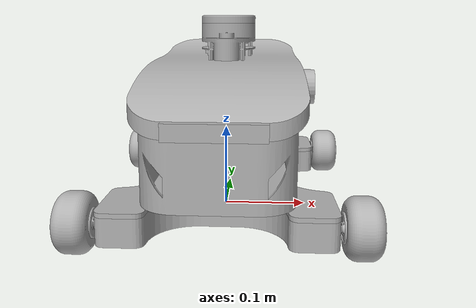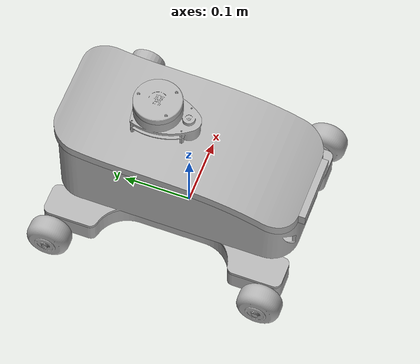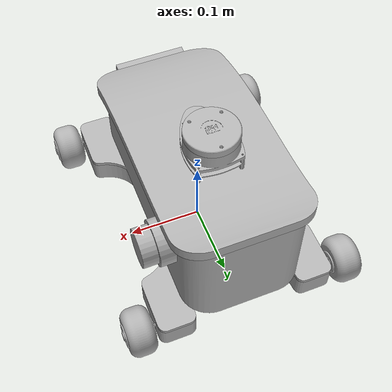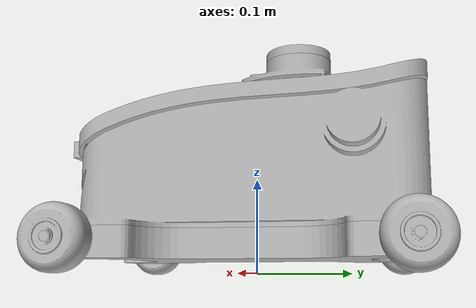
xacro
<?xml version="1.0" ?>
<robot name="navbot" xmlns:xacro="http://www.ros.org/wiki/xacro">

<xacro:include filename="$(find navbot_description)/urdf/materials.xacro" />
<xacro:include filename="$(find navbot_description)/urdf/navbot.trans" />
<xacro:include filename="$(find navbot_description)/urdf/navbot.gazebo" />
<link name="base_link">
  <inertial>
    <origin rpy="0 0 0" xyz="3.552713678800501e-17 -3.1974423109204507e-16 0.022671192333720645"/>
    <mass value="3.479466849284684"/>
    <inertia ixx="0.042079" ixy="0.0" ixz="0.0" iyy="0.018671" iyz="0.0" izz="0.060223"/>
  </inertial>
  <visual>
    <origin rpy="0 0 0" xyz="0 0 0"/>
    <geometry>
      <mesh filename="package://navbot_description/meshes/base_link.stl" scale="0.001 0.001 0.001"/>
    </geometry>
    <material name="silver"/>
  </visual>
  <collision>
    <origin rpy="0 0 0" xyz="0 0 0"/>
    <geometry>
      <mesh filename="package://navbot_description/meshes/base_link.stl" scale="0.001 0.001 0.001"/>
    </geometry>
  </collision>
</link>

<link name="motor1_1">
  <inertial>
    <origin rpy="0 0 0" xyz="0.005496075880014134 0.026638282718678546 1.1643357666901721e-09"/>
    <mass value="0.20794371384790172"/>
    <inertia ixx="6.8e-05" ixy="-1.3e-05" ixz="-0.0" iyy="4.4e-05" iyz="-0.0" izz="9.8e-05"/>
  </inertial>
  <visual>
    <origin rpy="0 0 0" xyz="0.115 0.17 -0.03175"/>
    <geometry>
      <mesh filename="package://navbot_description/meshes/motor1_1.stl" scale="0.001 0.001 0.001"/>
    </geometry>
    <material name="silver"/>
  </visual>
  <collision>
    <origin rpy="0 0 0" xyz="0.115 0.17 -0.03175"/>
    <geometry>
      <mesh filename="package://navbot_description/meshes/motor1_1.stl" scale="0.001 0.001 0.001"/>
    </geometry>
  </collision>
</link>

<link name="motor2_1">
  <inertial>
    <origin rpy="0 0 0" xyz="-0.005496075880013704 0.026638282718574602 -1.1643405545269658e-09"/>
    <mass value="0.20794371384790217"/>
    <inertia ixx="6.8e-05" ixy="1.3e-05" ixz="-0.0" iyy="4.4e-05" iyz="0.0" izz="9.8e-05"/>
  </inertial>
  <visual>
    <origin rpy="0 0 0" xyz="-0.115 0.17 -0.03175"/>
    <geometry>
      <mesh filename="package://navbot_description/meshes/motor2_1.stl" scale="0.001 0.001 0.001"/>
    </geometry>
    <material name="silver"/>
  </visual>
  <collision>
    <origin rpy="0 0 0" xyz="-0.115 0.17 -0.03175"/>
    <geometry>
      <mesh filename="package://navbot_description/meshes/motor2_1.stl" scale="0.001 0.001 0.001"/>
    </geometry>
  </collision>
</link>

<link name="motor4_1">
  <inertial>
    <origin rpy="0 0 0" xyz="-0.00549607588001387 -0.0266382827186791 1.1643358222013234e-09"/>
    <mass value="0.20794371384790097"/>
    <inertia ixx="6.8e-05" ixy="-1.3e-05" ixz="0.0" iyy="4.4e-05" iyz="0.0" izz="9.8e-05"/>
  </inertial>
  <visual>
    <origin rpy="0 0 0" xyz="-0.115 -0.17 -0.03175"/>
    <geometry>
      <mesh filename="package://navbot_description/meshes/motor4_1.stl" scale="0.001 0.001 0.001"/>
    </geometry>
    <material name="silver"/>
  </visual>
  <collision>
    <origin rpy="0 0 0" xyz="-0.115 -0.17 -0.03175"/>
    <geometry>
      <mesh filename="package://navbot_description/meshes/motor4_1.stl" scale="0.001 0.001 0.001"/>
    </geometry>
  </collision>
</link>

<link name="motor3_1">
  <inertial>
    <origin rpy="0 0 0" xyz="0.005496075880014023 -0.026638282718575185 -1.1643404573824512e-09"/>
    <mass value="0.207943713847902"/>
    <inertia ixx="6.8e-05" ixy="1.3e-05" ixz="0.0" iyy="4.4e-05" iyz="-0.0" izz="9.8e-05"/>
  </inertial>
  <visual>
    <origin rpy="0 0 0" xyz="0.115 -0.17 -0.03175"/>
    <geometry>
      <mesh filename="package://navbot_description/meshes/motor3_1.stl" scale="0.001 0.001 0.001"/>
    </geometry>
    <material name="silver"/>
  </visual>
  <collision>
    <origin rpy="0 0 0" xyz="0.115 -0.17 -0.03175"/>
    <geometry>
      <mesh filename="package://navbot_description/meshes/motor3_1.stl" scale="0.001 0.001 0.001"/>
    </geometry>
  </collision>
</link>

<link name="mid_body_1">
  <inertial>
    <origin rpy="0 0 0" xyz="-0.08709026707270268 0.19892907010938013 0.039371005512053914"/>
    <mass value="9.061466311945173"/>
    <inertia ixx="0.124178" ixy="-0.006509" ixz="-0.004059" iyy="0.05392" iyz="-0.011008" izz="0.148121"/>
  </inertial>
  <visual>
    <origin rpy="0 0 0" xyz="-0.095 0.18 -0.04425"/>
    <geometry>
      <mesh filename="package://navbot_description/meshes/mid_body_1.stl" scale="0.001 0.001 0.001"/>
    </geometry>
    <material name="silver"/>
  </visual>
  <collision>
    <origin rpy="0 0 0" xyz="-0.095 0.18 -0.04425"/>
    <geometry>
      <mesh filename="package://navbot_description/meshes/mid_body_1.stl" scale="0.001 0.001 0.001"/>
    </geometry>
  </collision>
</link>

<link name="top_body_1">
  <inertial>
    <origin rpy="0 0 0" xyz="4.318260539534942e-08 -0.18176494452952152 -0.014171898071690225"/>
    <mass value="2.9524172354615117"/>
    <inertia ixx="0.034502" ixy="0.0" ixz="0.0" iyy="0.009666" iyz="-0.004331" izz="0.042774"/>
  </inertial>
  <visual>
    <origin rpy="0 0 0" xyz="0.000317 -0.179027 -0.18925"/>
    <geometry>
      <mesh filename="package://navbot_description/meshes/top_body_1.stl" scale="0.001 0.001 0.001"/>
    </geometry>
    <material name="silver"/>
  </visual>
  <collision>
    <origin rpy="0 0 0" xyz="0.000317 -0.179027 -0.18925"/>
    <geometry>
      <mesh filename="package://navbot_description/meshes/top_body_1.stl" scale="0.001 0.001 0.001"/>
    </geometry>
  </collision>
</link>

<link name="wheel1_1">
  <inertial>
    <origin rpy="0 0 0" xyz="0.02063750000000003 -2.7755575615628914e-16 3.1433189384699745e-15"/>
    <mass value="0.7868151784300828"/>
    <inertia ixx="0.000372" ixy="0.0" ixz="0.0" iyy="0.00026" iyz="0.0" izz="0.00026"/>
  </inertial>
  <visual>
    <origin rpy="0 0 0" xyz="0.163275 0.159 -0.03175"/>
    <geometry>
      <mesh filename="package://navbot_description/meshes/wheel1_1.stl" scale="0.001 0.001 0.001"/>
    </geometry>
    <material name="silver"/>
  </visual>
  <collision>
    <origin rpy="0 0 0" xyz="0.163275 0.159 -0.03175"/>
    <geometry>
      <mesh filename="package://navbot_description/meshes/wheel1_1.stl" scale="0.001 0.001 0.001"/>
    </geometry>
  </collision>
</link>

<link name="wheel2_1">
  <inertial>
    <origin rpy="0 0 0" xyz="-0.02063749999999953 -1.6653345369377348e-16 3.0253577421035516e-15"/>
    <mass value="0.7868151784300826"/>
    <inertia ixx="0.000372" ixy="0.0" ixz="0.0" iyy="0.00026" iyz="-0.0" izz="0.00026"/>
  </inertial>
  <visual>
    <origin rpy="0 0 0" xyz="-0.163275 0.159 -0.03175"/>
    <geometry>
      <mesh filename="package://navbot_description/meshes/wheel2_1.stl" scale="0.001 0.001 0.001"/>
    </geometry>
    <material name="silver"/>
  </visual>
  <collision>
    <origin rpy="0 0 0" xyz="-0.163275 0.159 -0.03175"/>
    <geometry>
      <mesh filename="package://navbot_description/meshes/wheel2_1.stl" scale="0.001 0.001 0.001"/>
    </geometry>
  </collision>
</link>

<link name="wheel3_1">
  <inertial>
    <origin rpy="0 0 0" xyz="0.019367500000000204 -1.1657341758564144e-15 -3.4139358007223564e-15"/>
    <mass value="0.7868151784300826"/>
    <inertia ixx="0.000372" ixy="0.0" ixz="0.0" iyy="0.00026" iyz="0.0" izz="0.00026"/>
  </inertial>
  <visual>
    <origin rpy="0 0 0" xyz="0.163275 -0.159 -0.03175"/>
    <geometry>
      <mesh filename="package://navbot_description/meshes/wheel3_1.stl" scale="0.001 0.001 0.001"/>
    </geometry>
    <material name="silver"/>
  </visual>
  <collision>
    <origin rpy="0 0 0" xyz="0.163275 -0.159 -0.03175"/>
    <geometry>
      <mesh filename="package://navbot_description/meshes/wheel3_1.stl" scale="0.001 0.001 0.001"/>
    </geometry>
  </collision>
</link>

<link name="wheel4_1">
  <inertial>
    <origin rpy="0 0 0" xyz="-0.02063750000000017 -7.216449660063518e-16 3.1433189384699745e-15"/>
    <mass value="0.7868151784300828"/>
    <inertia ixx="0.000372" ixy="-0.0" ixz="-0.0" iyy="0.00026" iyz="0.0" izz="0.00026"/>
  </inertial>
  <visual>
    <origin rpy="0 0 0" xyz="-0.163275 -0.159 -0.03175"/>
    <geometry>
      <mesh filename="package://navbot_description/meshes/wheel4_1.stl" scale="0.001 0.001 0.001"/>
    </geometry>
    <material name="silver"/>
  </visual>
  <collision>
    <origin rpy="0 0 0" xyz="-0.163275 -0.159 -0.03175"/>
    <geometry>
      <mesh filename="package://navbot_description/meshes/wheel4_1.stl" scale="0.001 0.001 0.001"/>
    </geometry>
  </collision>
</link>

<link name="lidar_base_1">
  <inertial>
    <origin rpy="0 0 0" xyz="0.18019385343792652 0.3033019792664523 0.041061069905298536"/>
    <mass value="1.0419324974453863"/>
    <inertia ixx="0.00074" ixy="1e-06" ixz="-2e-06" iyy="0.00041" iyz="-0.000114" izz="0.000906"/>
  </inertial>
  <visual>
    <origin rpy="0 0 0" xyz="0.180225 0.265825 -0.170763"/>
    <geometry>
      <mesh filename="package://navbot_description/meshes/lidar_base_1.stl" scale="0.001 0.001 0.001"/>
    </geometry>
    <material name="silver"/>
  </visual>
  <collision>
    <origin rpy="0 0 0" xyz="0.180225 0.265825 -0.170763"/>
    <geometry>
      <mesh filename="package://navbot_description/meshes/lidar_base_1.stl" scale="0.001 0.001 0.001"/>
    </geometry>
  </collision>
</link>

<link name="lidar_1">
  <inertial>
    <origin rpy="0 0 0" xyz="6.172037570394097e-07 1.8841107082827324e-05 0.004936387434682055"/>
    <mass value="0.2973672103122705"/>
    <inertia ixx="9.3e-05" ixy="-0.0" ixz="-0.0" iyy="9.4e-05" iyz="-0.0" izz="0.000182"/>
  </inertial>
  <visual>
    <origin rpy="0 0 0" xyz="-9.2e-05 -0.046175 -0.229213"/>
    <geometry>
      <mesh filename="package://navbot_description/meshes/lidar_1.stl" scale="0.001 0.001 0.001"/>
    </geometry>
    <material name="silver"/>
  </visual>
  <collision>
    <origin rpy="0 0 0" xyz="-9.2e-05 -0.046175 -0.229213"/>
    <geometry>
      <mesh filename="package://navbot_description/meshes/lidar_1.stl" scale="0.001 0.001 0.001"/>
    </geometry>
  </collision>
</link>

<link name="camera_1">
  <inertial>
    <origin rpy="0 0 0" xyz="-6.124271091873055e-08 -0.005000001096143791 3.3578512409482286e-07"/>
    <mass value="0.13676499047572394"/>
    <inertia ixx="5e-06" ixy="0.0" ixz="0.0" iyy="0.000117" iyz="-0.0" izz="0.000115"/>
  </inertial>
  <visual>
    <origin rpy="0 0 0" xyz="0.000317 0.180116 -0.131061"/>
    <geometry>
      <mesh filename="package://navbot_description/meshes/camera_1.stl" scale="0.001 0.001 0.001"/>
    </geometry>
    <material name="silver"/>
  </visual>
  <collision>
    <origin rpy="0 0 0" xyz="0.000317 0.180116 -0.131061"/>
    <geometry>
      <mesh filename="package://navbot_description/meshes/camera_1.stl" scale="0.001 0.001 0.001"/>
    </geometry>
  </collision>
</link>

<joint name="m1_bl" type="fixed">
  <origin rpy="0 0 0" xyz="-0.115 -0.17 0.03175"/>
  <parent link="base_link"/>
  <child link="motor1_1"/>
</joint>

<joint name="m2_bl" type="fixed">
  <origin rpy="0 0 0" xyz="0.115 -0.17 0.03175"/>
  <parent link="base_link"/>
  <child link="motor2_1"/>
</joint>

<joint name="m4_bl" type="fixed">
  <origin rpy="0 0 0" xyz="0.115 0.17 0.03175"/>
  <parent link="base_link"/>
  <child link="motor4_1"/>
</joint>

<joint name="m3_bl" type="fixed">
  <origin rpy="0 0 0" xyz="-0.115 0.17 0.03175"/>
  <parent link="base_link"/>
  <child link="motor3_1"/>
</joint>

<joint name="base_mid" type="fixed">
  <origin rpy="0 0 0" xyz="0.095 -0.18 0.04425"/>
  <parent link="base_link"/>
  <child link="mid_body_1"/>
</joint>

<joint name="mid_top" type="fixed">
  <origin rpy="0 0 0" xyz="-0.095317 0.359027 0.145"/>
  <parent link="mid_body_1"/>
  <child link="top_body_1"/>
</joint>

<joint name="w1" type="continuous">
  <origin rpy="0 0 0" xyz="-0.048275 0.011 0.0"/>
  <parent link="motor1_1"/>
  <child link="wheel1_1"/>
  <axis xyz="1.0 -0.0 -0.0"/>
</joint>

<joint name="w2" type="continuous">
  <origin rpy="0 0 0" xyz="0.048275 0.011 0.0"/>
  <parent link="motor2_1"/>
  <child link="wheel2_1"/>
  <axis xyz="-1.0 0.0 0.0"/>
</joint>

<joint name="w3" type="continuous">
  <origin rpy="0 0 0" xyz="-0.048275 -0.011 0.0"/>
  <parent link="motor3_1"/>
  <child link="wheel3_1"/>
  <axis xyz="1.0 -0.0 -0.0"/>
</joint>

<joint name="w4" type="continuous">
  <origin rpy="0 0 0" xyz="0.048275 -0.011 0.0"/>
  <parent link="motor4_1"/>
  <child link="wheel4_1"/>
  <axis xyz="-1.0 -0.0 0.0"/>
</joint>

<joint name="lidar_base" type="fixed">
  <origin rpy="0 0 0" xyz="-0.179908 -0.444852 -0.018487"/>
  <parent link="top_body_1"/>
  <child link="lidar_base_1"/>
</joint>

<joint name="lidar" type="fixed">
  <origin rpy="0 0 0" xyz="0.180317 0.312 0.05845"/>
  <parent link="lidar_base_1"/>
  <child link="lidar_1"/>
</joint>

<joint name="camera_jt" type="fixed">
  <origin rpy="0 0 0" xyz="0.0 -0.359143 -0.058189"/>
  <parent link="top_body_1"/>
  <child link="camera_1"/>
</joint>

</robot>

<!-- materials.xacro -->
<robot name="ghumi" xmlns:xacro="http://www.ros.org/wiki/xacro" >

<material name="silver">
  <color rgba="0.700 0.700 0.700 1.000"/>
</material>

</robot>

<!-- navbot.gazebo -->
<robot name="navbot" xmlns:xacro="http://www.ros.org/wiki/xacro" >

<xacro:property name="body_color" value="Gazebo/Silver" />

<gazebo>
  <plugin filename="libgazebo_ros_control.so" name="control"/>
</gazebo>
<gazebo reference="base_link">
  <material>${body_color}</material>
  <mu1>0.2</mu1>
  <mu2>0.2</mu2>
  <selfCollide>true</selfCollide>
  <gravity>true</gravity>
</gazebo>

<gazebo reference="motor1_1">
  <material>${body_color}</material>
  <mu1>0.2</mu1>
  <mu2>0.2</mu2>
  <selfCollide>true</selfCollide>
</gazebo>

<gazebo reference="motor2_1">
  <material>${body_color}</material>
  <mu1>0.2</mu1>
  <mu2>0.2</mu2>
  <selfCollide>true</selfCollide>
</gazebo>

<gazebo reference="motor4_1">
  <material>${body_color}</material>
  <mu1>0.2</mu1>
  <mu2>0.2</mu2>
  <selfCollide>true</selfCollide>
</gazebo>

<gazebo reference="motor3_1">
  <material>${body_color}</material>
  <mu1>0.2</mu1>
  <mu2>0.2</mu2>
  <selfCollide>true</selfCollide>
</gazebo>

<gazebo reference="mid_body_1">
  <material>${body_color}</material>
  <mu1>0.2</mu1>
  <mu2>0.2</mu2>
  <selfCollide>true</selfCollide>
</gazebo>

<gazebo reference="top_body_1">
  <material>${body_color}</material>
  <mu1>0.2</mu1>
  <mu2>0.2</mu2>
  <selfCollide>true</selfCollide>
</gazebo>

<gazebo reference="wheel1_1">
  <material>${body_color}</material>
  <mu1>0.2</mu1>
  <mu2>0.2</mu2>
  <selfCollide>true</selfCollide>
</gazebo>

<gazebo reference="wheel2_1">
  <material>${body_color}</material>
  <mu1>0.2</mu1>
  <mu2>0.2</mu2>
  <selfCollide>true</selfCollide>
</gazebo>

<gazebo reference="wheel3_1">
  <material>${body_color}</material>
  <mu1>0.2</mu1>
  <mu2>0.2</mu2>
  <selfCollide>true</selfCollide>
</gazebo>

<gazebo reference="wheel4_1">
  <material>${body_color}</material>
  <mu1>0.2</mu1>
  <mu2>0.2</mu2>
  <selfCollide>true</selfCollide>
</gazebo>

<gazebo reference="lidar_base_1">
  <material>${body_color}</material>
  <mu1>0.2</mu1>
  <mu2>0.2</mu2>
  <selfCollide>true</selfCollide>
</gazebo>

<gazebo reference="lidar_1">
  <material>${body_color}</material>
  <mu1>0.2</mu1>
  <mu2>0.2</mu2>
  <selfCollide>true</selfCollide>
</gazebo>

<gazebo reference="camera_1">
  <material>${body_color}</material>
  <mu1>0.2</mu1>
  <mu2>0.2</mu2>
  <selfCollide>true</selfCollide>
</gazebo>

</robot>
